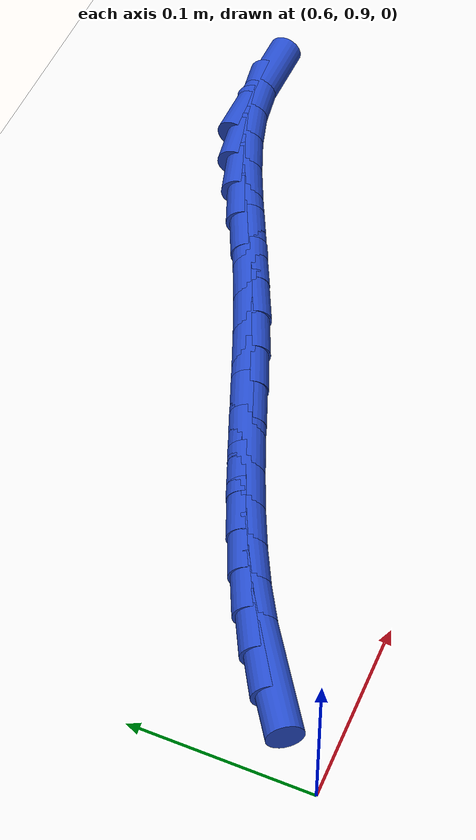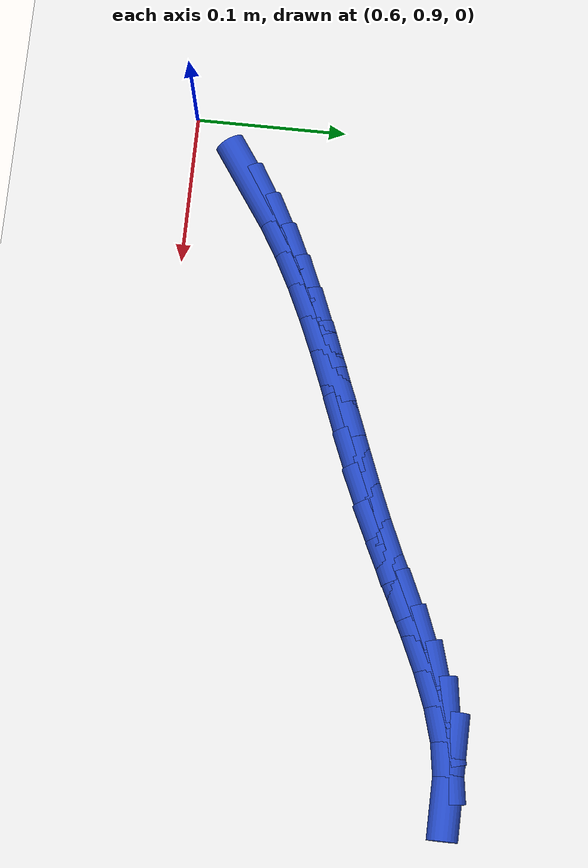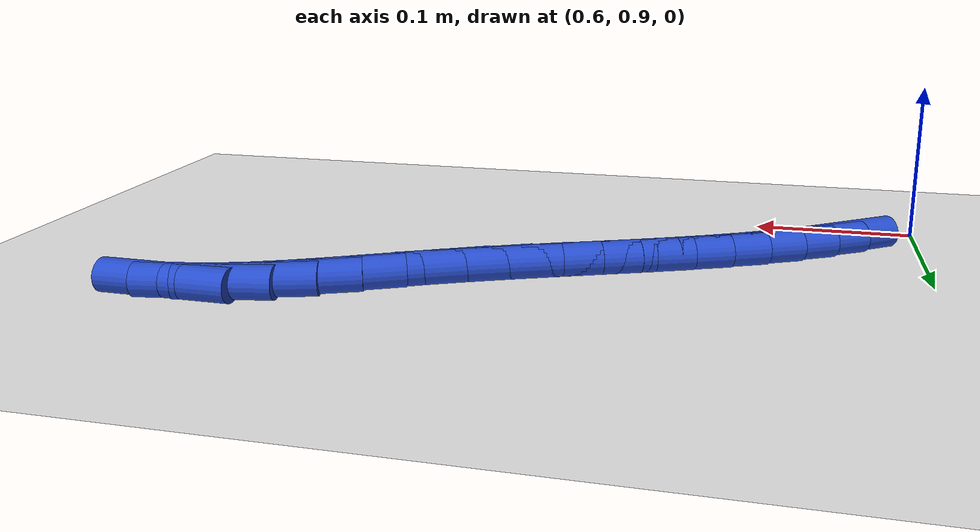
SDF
<sdf version="1.6">
 <world name="default">
  <model name="ground_plane">
   <static>1</static>
   <link name="link">
    <collision name="collision">
     <geometry><plane><normal>0 0 1</normal><size>100 100</size></plane></geometry>
     <surface><friction><ode><mu>100</mu><mu2>50</mu2></ode></friction></surface>
    </collision>
    <visual name="visual">
     <cast_shadows>0</cast_shadows>
     <geometry><plane><normal>0 0 1</normal><size>100 100</size></plane></geometry>
     <material>
      <script><uri>file://media/materials/scripts/gazebo.material</uri><name>Gazebo/WhiteGlow</name></script>
     </material>
    </visual>
   </link>
  </model>
  <model name="line">
   <link name="link_51">
    <pose>0.65104549582599 0.9463342851628574 0.01 0 1.57 0.601204826072576</pose>
    <collision name="collision">
     <geometry><cylinder><radius>0.01</radius><length>0.08</length></cylinder></geometry>
    </collision>
    <visual name="visual">
     <material>
      <script><name>Gazebo/Blue</name><uri>file://media/materials/scripts/gazebo.material</uri></script>
     </material>
     <geometry><cylinder><radius>0.01</radius><length>0.08</length></cylinder></geometry>
    </visual>
   </link>
   <link name="link_52">
    <pose>0.6701773530000044 0.9594569600171895 0.01 0 1.57 0.5382422064544571</pose>
    <collision name="collision">
     <geometry><cylinder><radius>0.01</radius><length>0.08</length></cylinder></geometry>
    </collision>
    <visual name="visual">
     <material>
      <script><name>Gazebo/Blue</name><uri>file://media/materials/scripts/gazebo.material</uri></script>
     </material>
     <geometry><cylinder><radius>0.01</radius><length>0.08</length></cylinder></geometry>
    </visual>
   </link>
   <link name="link_53">
    <pose>0.6900365221695057 0.9713137327730604 0.01 0 1.57 0.4839202281921699</pose>
    <collision name="collision">
     <geometry><cylinder><radius>0.01</radius><length>0.08</length></cylinder></geometry>
    </collision>
    <visual name="visual">
     <material>
      <script><name>Gazebo/Blue</name><uri>file://media/materials/scripts/gazebo.material</uri></script>
     </material>
     <geometry><cylinder><radius>0.01</radius><length>0.08</length></cylinder></geometry>
    </visual>
   </link>
   <link name="link_54">
    <pose>0.7105500642330171 0.982095728633549 0.01 0 1.57 0.4400397293444088</pose>
    <collision name="collision">
     <geometry><cylinder><radius>0.01</radius><length>0.08</length></cylinder></geometry>
    </collision>
    <visual name="visual">
     <material>
      <script><name>Gazebo/Blue</name><uri>file://media/materials/scripts/gazebo.material</uri></script>
     </material>
     <geometry><cylinder><radius>0.01</radius><length>0.08</length></cylinder></geometry>
    </visual>
   </link>
   <link name="link_55">
    <pose>0.7316305647468763 0.9920210409362787 0.01 0 1.57 0.4067204012210863</pose>
    <collision name="collision">
     <geometry><cylinder><radius>0.01</radius><length>0.08</length></cylinder></geometry>
    </collision>
    <visual name="visual">
     <material>
      <script><name>Gazebo/Blue</name><uri>file://media/materials/scripts/gazebo.material</uri></script>
     </material>
     <geometry><cylinder><radius>0.01</radius><length>0.08</length></cylinder></geometry>
    </visual>
   </link>
   <link name="link_56">
    <pose>0.75319060926742 1.001307763018873 0.01 0 1.57 0.3838538170917643</pose>
    <collision name="collision">
     <geometry><cylinder><radius>0.01</radius><length>0.08</length></cylinder></geometry>
    </collision>
    <visual name="visual">
     <material>
      <script><name>Gazebo/Blue</name><uri>file://media/materials/scripts/gazebo.material</uri></script>
     </material>
     <geometry><cylinder><radius>0.01</radius><length>0.08</length></cylinder></geometry>
    </visual>
   </link>
   <link name="link_57">
    <pose>0.7751427833509863 1.0101739882189553 0.01 0 1.57 0.3712177031046744</pose>
    <collision name="collision">
     <geometry><cylinder><radius>0.01</radius><length>0.08</length></cylinder></geometry>
    </collision>
    <visual name="visual">
     <material>
      <script><name>Gazebo/Blue</name><uri>file://media/materials/scripts/gazebo.material</uri></script>
     </material>
     <geometry><cylinder><radius>0.01</radius><length>0.08</length></cylinder></geometry>
    </visual>
   </link>
   <link name="link_58">
    <pose>0.7973996725539123 1.0188378098741486 0.01 0 1.57 0.36855271194304695</pose>
    <collision name="collision">
     <geometry><cylinder><radius>0.01</radius><length>0.08</length></cylinder></geometry>
    </collision>
    <visual name="visual">
     <material>
      <script><name>Gazebo/Blue</name><uri>file://media/materials/scripts/gazebo.material</uri></script>
     </material>
     <geometry><cylinder><radius>0.01</radius><length>0.08</length></cylinder></geometry>
    </visual>
   </link>
   <link name="link_59">
    <pose>0.8198738624325361 1.0275173213220772 0.01 0 1.57 0.3756023721718916</pose>
    <collision name="collision">
     <geometry><cylinder><radius>0.01</radius><length>0.08</length></cylinder></geometry>
    </collision>
    <visual name="visual">
     <material>
      <script><name>Gazebo/Blue</name><uri>file://media/materials/scripts/gazebo.material</uri></script>
     </material>
     <geometry><cylinder><radius>0.01</radius><length>0.08</length></cylinder></geometry>
    </visual>
   </link>
   <link name="link_60">
    <pose>0.8424779385431943 1.0364306159003638 0.01 0 1.57 0.3921209172730679</pose>
    <collision name="collision">
     <geometry><cylinder><radius>0.01</radius><length>0.08</length></cylinder></geometry>
    </collision>
    <visual name="visual">
     <material>
      <script><name>Gazebo/Blue</name><uri>file://media/materials/scripts/gazebo.material</uri></script>
     </material>
     <geometry><cylinder><radius>0.01</radius><length>0.08</length></cylinder></geometry>
    </visual>
   </link>
   <link name="link_61">
    <pose>0.8651244864422253 1.0457957869466317 0.01 0 1.57 0.4178541737620026</pose>
    <collision name="collision">
     <geometry><cylinder><radius>0.01</radius><length>0.08</length></cylinder></geometry>
    </collision>
    <visual name="visual">
     <material>
      <script><name>Gazebo/Blue</name><uri>file://media/materials/scripts/gazebo.material</uri></script>
     </material>
     <geometry><cylinder><radius>0.01</radius><length>0.08</length></cylinder></geometry>
    </visual>
   </link>
   <link name="link_62">
    <pose>0.8877260916859657 1.0558309277985045 0.01 0 1.57 0.44629120481709333</pose>
    <collision name="collision">
     <geometry><cylinder><radius>0.01</radius><length>0.08</length></cylinder></geometry>
    </collision>
    <visual name="visual">
     <material>
      <script><name>Gazebo/Blue</name><uri>file://media/materials/scripts/gazebo.material</uri></script>
     </material>
     <geometry><cylinder><radius>0.01</radius><length>0.08</length></cylinder></geometry>
    </visual>
   </link>
   <link name="link_63">
    <pose>0.9102110729810605 1.0665897442699426 0.01 0 1.57 0.45213760038423545</pose>
    <collision name="collision">
     <geometry><cylinder><radius>0.01</radius><length>0.08</length></cylinder></geometry>
    </collision>
    <visual name="visual">
     <material>
      <script><name>Gazebo/Blue</name><uri>file://media/materials/scripts/gazebo.material</uri></script>
     </material>
     <geometry><cylinder><radius>0.01</radius><length>0.08</length></cylinder></geometry>
    </visual>
   </link>
   <link name="link_64">
    <pose>0.9325723933193313 1.0774505075828478 0.01 0 1.57 0.42868030031112375</pose>
    <collision name="collision">
     <geometry><cylinder><radius>0.01</radius><length>0.08</length></cylinder></geometry>
    </collision>
    <visual name="visual">
     <material>
      <script><name>Gazebo/Blue</name><uri>file://media/materials/scripts/gazebo.material</uri></script>
     </material>
     <geometry><cylinder><radius>0.01</radius><length>0.08</length></cylinder></geometry>
    </visual>
   </link>
   <link name="link_65">
    <pose>0.9548196162597582 1.08761803824687 0.01 0 1.57 0.37355892491789977</pose>
    <collision name="collision">
     <geometry><cylinder><radius>0.01</radius><length>0.08</length></cylinder></geometry>
    </collision>
    <visual name="visual">
     <material>
      <script><name>Gazebo/Blue</name><uri>file://media/materials/scripts/gazebo.material</uri></script>
     </material>
     <geometry><cylinder><radius>0.01</radius><length>0.08</length></cylinder></geometry>
    </visual>
   </link>
   <link name="link_66">
    <pose>0.9769623053728899 1.096297156650803 0.01 0 1.57 0.28232804513062404</pose>
    <collision name="collision">
     <geometry><cylinder><radius>0.01</radius><length>0.08</length></cylinder></geometry>
    </collision>
    <visual name="visual">
     <material>
      <script><name>Gazebo/Blue</name><uri>file://media/materials/scripts/gazebo.material</uri></script>
     </material>
     <geometry><cylinder><radius>0.01</radius><length>0.08</length></cylinder></geometry>
    </visual>
   </link>
   <link name="link_67">
    <pose>0.9990100242292734 1.102692683183439 0.01 0 1.57 0.1498938440151525</pose>
    <collision name="collision">
     <geometry><cylinder><radius>0.01</radius><length>0.08</length></cylinder></geometry>
    </collision>
    <visual name="visual">
     <material>
      <script><name>Gazebo/Blue</name><uri>file://media/materials/scripts/gazebo.material</uri></script>
     </material>
     <geometry><cylinder><radius>0.01</radius><length>0.08</length></cylinder></geometry>
    </visual>
   </link>
   <link name="link_68">
    <pose>1.0209723391560148 1.1060095777918257 0.01 0 1.57 -0.01249065189166827</pose>
    <collision name="collision">
     <geometry><cylinder><radius>0.01</radius><length>0.08</length></cylinder></geometry>
    </collision>
    <visual name="visual">
     <material>
      <script><name>Gazebo/Blue</name><uri>file://media/materials/scripts/gazebo.material</uri></script>
     </material>
     <geometry><cylinder><radius>0.01</radius><length>0.08</length></cylinder></geometry>
    </visual>
   </link>
  </model>
 </world>
</sdf>
